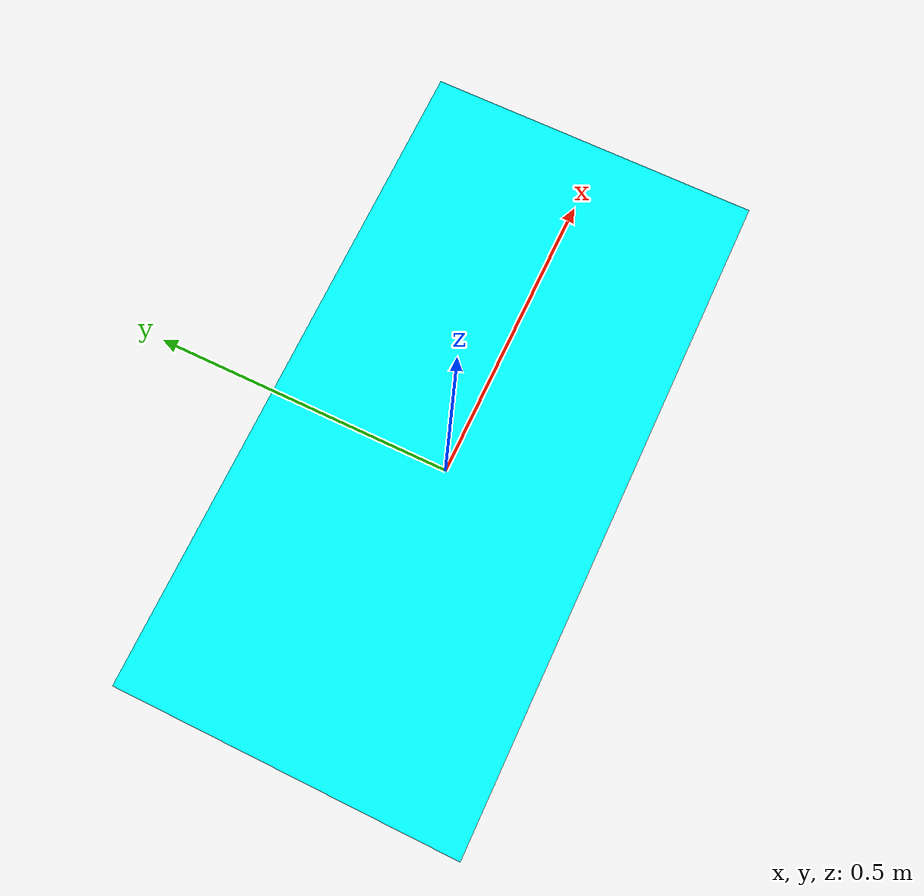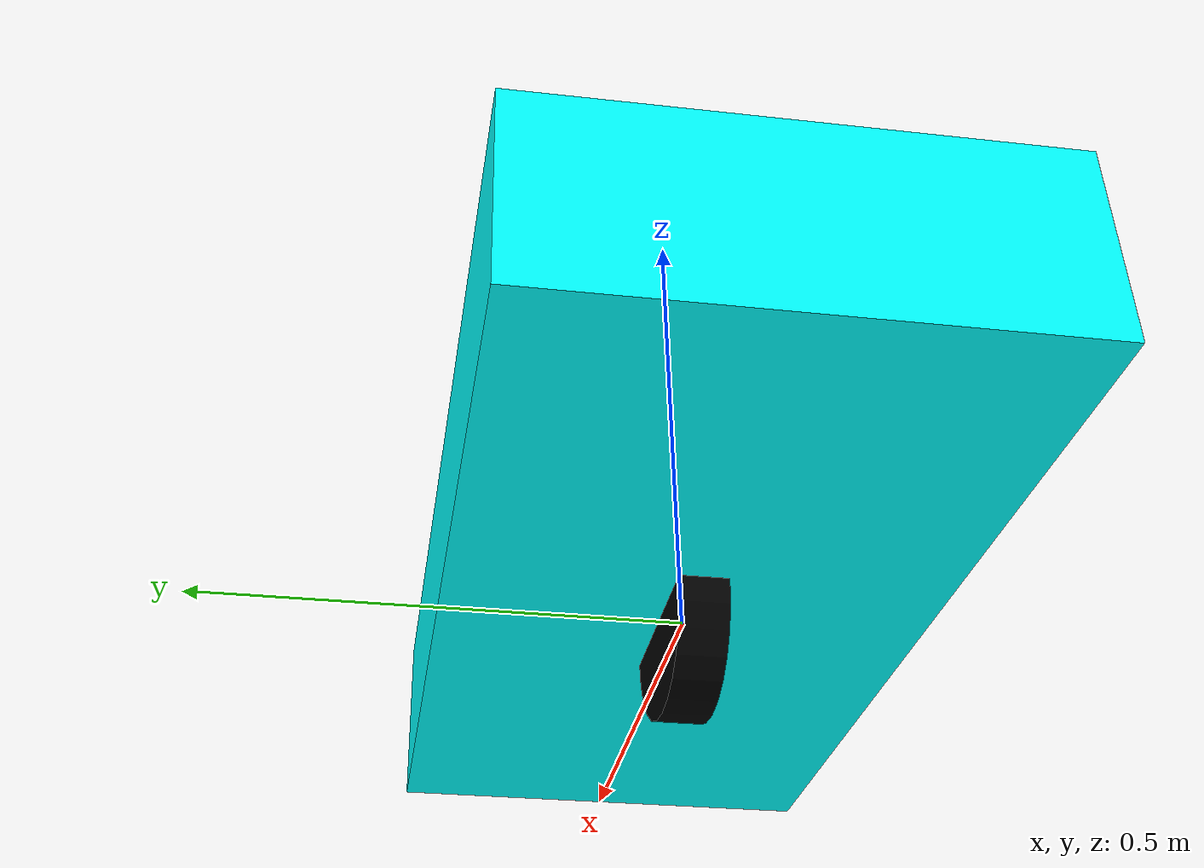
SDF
<?xml version="1.0" ?>
<sdf version='1.9'>
  <model name='simple_car'>

    <ros2_control name="GazeboSystem" type="system">
      <hardware>
        <plugin>gazebo_ros2_control/GazeboSystem</plugin>
      </hardware>
      <joint name="slider_to_cart">
        <command_interface name="effort">
          <param name="min">-1000</param>
          <param name="max">1000</param>
        </command_interface>
        <state_interface name="position">
          <param name="initial_value">1.0</param>
        </state_interface>
        <state_interface name="velocity"/>
        <state_interface name="effort"/>
      </joint>
    </ros2_control>

    <!-- Base Link -->
    <link name='base_link'>
      <inertial>
        <pose>0.045454545454545463 0 0.1090909090909091 0 0 0</pose>
        <mass>5.5</mass>
        <inertia>
          <ixx>0.1095454545454545</ixx>
          <ixy>0</ixy>
          <ixz>-0.022727272727272721</ixz>
          <iyy>0.2231818181818182</iyy>
          <iyz>0</iyz>
          <izz>0.21863636363636371</izz>
        </inertia>
      </inertial>

      <!-- Main body collision & visual -->
      <collision name='base_link_collision'>
        <pose>0 0 0.1 0 0 0</pose>
        <geometry>
          <box><size>1 0.5 0.2</size></box>
        </geometry>
      </collision>
      <visual name='base_link_visual'>
        <pose>0 0 0.1 0 0 0</pose>
        <geometry>
          <box><size>1 0.5 0.2</size></box>
        </geometry>
        <material>
          <diffuse>0 1 1 1</diffuse>
          <ambient>0 1 1 1</ambient>
        </material>
      </visual>
    </link>

    <!-- Wheel joints and links (4 wheels) -->
    <!-- Front Left -->
    <joint name='front_left_wheel_joint' type='revolute'>
      <pose relative_to='base_link'>0.4 0.25 0.05 0 0 0</pose>
      <parent>base_link</parent>
      <child>front_left_wheel</child>
      <axis><xyz>0 1 0</xyz></axis>
    </joint>
    <link name='front_left_wheel'>
      <collision name='front_left_wheel_collision'>
        <pose>0 0 0 1.5708 0 0</pose>
        <geometry><cylinder><length>0.05</length><radius>0.1</radius></cylinder></geometry>
      </collision>
      <visual name='front_left_wheel_visual'>
        <pose>0 0 0 1.5708 0 0</pose>
        <geometry><cylinder><length>0.05</length><radius>0.1</radius></cylinder></geometry>
        <material><diffuse>0 0 0 1</diffuse></material>
      </visual>
    </link>

    <!-- Front Right -->
    <joint name='front_right_wheel_joint' type='revolute'>
      <pose relative_to='base_link'>0.4 -0.25 0.05 0 0 0</pose>
      <parent>base_link</parent>
      <child>front_right_wheel</child>
      <axis><xyz>0 1 0</xyz></axis>
    </joint>
    <link name='front_right_wheel'>
      <collision name='front_right_wheel_collision'>
        <pose>0 0 0 1.5708 0 0</pose>
        <geometry><cylinder><length>0.05</length><radius>0.1</radius></cylinder></geometry>
      </collision>
      <visual name='front_right_wheel_visual'>
        <pose>0 0 0 1.5708 0 0</pose>
        <geometry><cylinder><length>0.05</length><radius>0.1</radius></cylinder></geometry>
        <material><diffuse>0 0 0 1</diffuse></material>
      </visual>
    </link>

    <!-- Rear Left -->
    <joint name='rear_left_wheel_joint' type='revolute'>
      <pose relative_to='base_link'>-0.4 0.25 0.05 0 0 0</pose>
      <parent>base_link</parent>
      <child>rear_left_wheel</child>
      <axis><xyz>0 1 0</xyz></axis>
    </joint>
    <link name='rear_left_wheel'>
      <collision name='rear_left_wheel_collision'>
        <pose>0 0 0 1.5708 0 0</pose>
        <geometry><cylinder><length>0.05</length><radius>0.1</radius></cylinder></geometry>
      </collision>
      <visual name='rear_left_wheel_visual'>
        <pose>0 0 0 1.5708 0 0</pose>
        <geometry><cylinder><length>0.05</length><radius>0.1</radius></cylinder></geometry>
        <material><diffuse>0 0 0 1</diffuse></material>
      </visual>
    </link>

    <!-- Rear Right -->
    <joint name='rear_right_wheel_joint' type='revolute'>
      <pose relative_to='base_link'>-0.4 -0.25 0.05 0 0 0</pose>
      <parent>base_link</parent>
      <child>rear_right_wheel</child>
      <axis><xyz>0 1 0</xyz></axis>
    </joint>
    <link name='rear_right_wheel'>
      <collision name='rear_right_wheel_collision'>
        <pose>0 0 0 1.5708 0 0</pose>
        <geometry><cylinder><length>0.05</length><radius>0.1</radius></cylinder></geometry>
      </collision>
      <visual name='rear_right_wheel_visual'>
        <pose>0 0 0 1.5708 0 0</pose>
        <geometry><cylinder><length>0.05</length><radius>0.1</radius></cylinder></geometry>
        <material><diffuse>0 0 0 1</diffuse></material>
      </visual>
    </link>

    <!-- CAMERA -->
    <link name='camera_link'>
      <pose>0.5 0 0.2 0 0 0</pose>
      <sensor name="camera_sensor" type="camera">
        <camera>
          <horizontal_fov>1.3962634</horizontal_fov>
          <image>
            <width>800</width>
            <height>600</height>
            <format>R8G8B8</format>
          </image>
          <clip><near>0.1</near><far>100</far></clip>
        </camera>
        <always_on>true</always_on>
        <update_rate>30</update_rate>
        <visualize>true</visualize>
        <plugin name="camera_controller" filename="libgazebo_ros_camera.so">
          <ros>
            <namespace>/car/camera</namespace>
            <remapping>image_raw:=image_raw</remapping>
          </ros>
          <camera_name>camera</camera_name>
          <image_topic_name>image_raw</image_topic_name>
          <camera_info_topic_name>camera_info</camera_info_topic_name>
          <frame_name>camera_link</frame_name>
        </plugin>
      </sensor>
    </link>

    <!-- GPS -->
    <link name='gps_link'>
      <pose>0 0 0.2 0 0 0</pose>
      <sensor name="gps_sensor" type="gps">
        <always_on>true</always_on>
        <update_rate>1</update_rate>
        <plugin name="gps_plugin" filename="libgazebo_ros_gps.so">
          <ros>
            <namespace>/car/gps</namespace>
            <remapping>fix:=fix</remapping>
          </ros>
          <frame_name>gps_link</frame_name>
        </plugin>
      </sensor>
    </link>

  </model>
</sdf>
